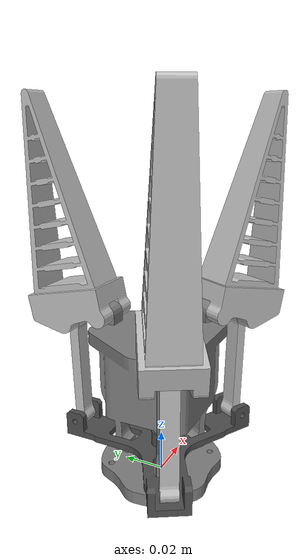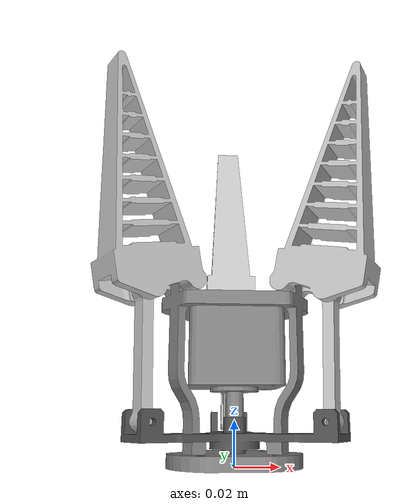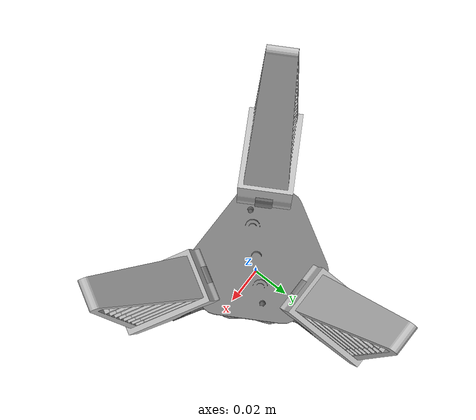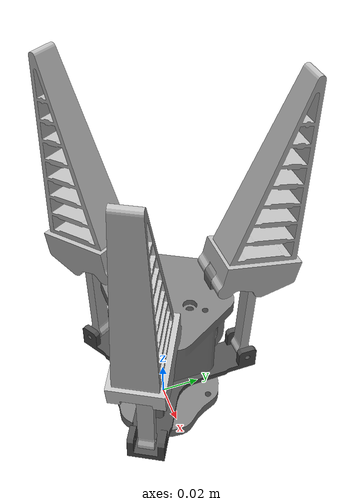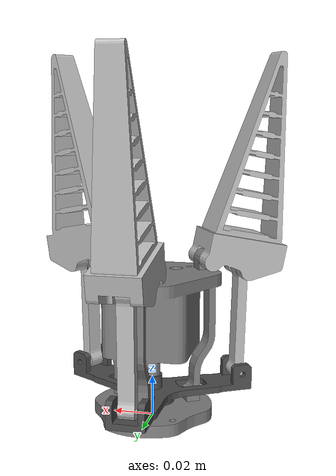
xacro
<?xml version="1.0" encoding="utf-8"?>

<robot name="gripper" xmlns:xacro="http://wiki.ros.org/xacro">

  <xacro:include filename="$(find g3p_description)/urdf/gripper_body.xacro" />

  <!-- Macro for inertia matrix -->
  <xacro:macro name="sphere_inertial_matrix" params="m r">
    <inertial>
      <mass value="${m}" />
        <inertia ixx="${2*m*r*r/5}" ixy="0" ixz="0" iyy="${2*m*r*r/5}" iyz="0"  izz="${2*m*r*r/5}" />
    </inertial>
  </xacro:macro>

  <xacro:macro name="cylinder_inertial_matrix" params="m r h">
    <inertial>
      <mass value="${m}" />
        <inertia ixx="${m*(3*r*r+h*h)/12}" ixy = "0" ixz = "0" iyy="${m*(3*r*r+h*h)/12}" iyz = "0" izz="${m*r*r/2}" />
    </inertial>
  </xacro:macro>

  <xacro:macro name="box_inertial_matrix" params="m w h d">
    <inertial>
      <mass value="${m}" />
        <inertia ixx="${m*(h*h+d*d)/12}" ixy = "0" ixz = "0" iyy="${m*(w*w+d*d)/12}" iyz = "0" izz="${m*(w*w+h*h)/12}" />
    </inertial>
  </xacro:macro>

 <!-- GRIPPER -->
  <link name="world" />

  <joint name="world_joint" type="fixed">
      <parent link="world" />
      <child link = "base_footprint" />
      <origin xyz="0 0 0" rpy="0 0 0" />
  </joint>

  <link name="base_footprint" >
    <xacro:box_inertial_matrix m="200" w ="1" h="0.01" d="1" />
    <visual>
      <origin xyz="0 0 0" rpy="0 0 0" />
      <geometry>
        <box size = "0 0 0" />
      </geometry>
      <material name="" />
    </visual>
    <collision>
        <geometry>
          <box size="0 0 0"/>
        </geometry>
        <origin rpy="0 0 0" xyz="0 0 0"/>
      </collision>
    </link >

  <xacro:gripper_body parent_prefix = "base_footprint">
    <origin xyz="0 0 0" rpy="-1.5708 0 0" />
  </xacro:gripper_body>

</robot>

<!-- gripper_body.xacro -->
<robot xmlns:xacro="http://ros.org/wiki/xacro" name="gripper_body">
  <xacro:macro name="gripper_body" params="parent_prefix *joint_pose">

  <link name="gripper_base_link">
    <inertial>
      <origin xyz="9.76421490710141E-17 0.000265648601089265 0.0461524278849085" rpy="0 0 0" />
      <mass value="0.79116187380842" />
      <inertia ixx="0.00053718861290841" ixy="4.00932740511828E-07" ixz="2.65873212245865E-18" iyy="0.000542127995100117" iyz="-6.49165503557269E-06"
 izz="0.000294143440148547" />
    </inertial>
    <visual>
      <origin xyz="0 0 0" rpy="0 0 0" />
      <geometry>
        <mesh filename="package://g3p_description/meshes/gripper_base_link.STL" />
      </geometry>
      <material name="">
        <color rgba="0.501960784313725 0.501960784313725 0.501960784313725 1" />
      </material>
    </visual>
    <collision>
      <origin xyz="0 0 0" rpy="0 0 0" />
      <geometry>
        <mesh filename="package://g3p_description/meshes/gripper_base_link.STL" />
      </geometry>
    </collision>
  </link>

  <joint name="gripper_base_joint" type="fixed">
    <xacro:insert_block name="joint_pose"/>
    <parent link="${parent_prefix}" />
    <child link="gripper_base_link" />
    <axis xyz="0 0 0" />
  </joint>

  <link name="tray_link">
    <inertial>
      <origin xyz="5.36047598906076E-15 0.00232707405513537 -1.38049714225429E-15" rpy="0 0 0" />
      <mass
        value="0.0821356394304339" />
      <inertia ixx="4.33734561455872E-05" ixy="-3.94177937836002E-19" ixz="-6.32677237213812E-18" iyy="8.53098098578309E-05" iyz="7.77072176014044E-20"
 izz="4.33734561455823E-05" />
    </inertial>
    <visual>
      <origin xyz="0 0 0" rpy="0 0 0" />
      <geometry>
        <mesh filename="package://g3p_description/meshes/tray_link.STL" />
      </geometry>
      <material name="">
        <color rgba="0.309803921568627 0.309803921568627 0.309803921568627 1" />
      </material>
    </visual>
    <collision>
      <origin xyz="0 0 0" rpy="0 0 0" />
      <geometry>
        <mesh filename="package://g3p_description/meshes/tray_link.STL" />
      </geometry>
    </collision>
  </link>

  <joint name="tray_joint" type="prismatic">
    <origin xyz="0 -0.01131 0" rpy="0 0 -3.1416" />
    <parent link="gripper_base_link" />
    <child link="tray_link" />
    <axis xyz="0 1 0" />
    <limit effort="20" lower="0" upper="0.011" velocity="1"/>
  </joint>

  <link name="pull_1_link">
    <inertial>
      <origin xyz="-1.52655665885959E-16 -0.0269999999999995 8.31906186047319E-17" rpy="0 0 0" />
      <mass value="0.0201505664052889" />
      <inertia ixx="6.78250384182504E-06" ixy="-1.01288266007118E-21" ixz="6.95830282202121E-24" iyy="1.6363439918366E-07" iyz="5.30168717822282E-22"
 izz="6.73119886601895E-06" />
    </inertial>
    <visual>
      <origin xyz="0 0 0" rpy="0 0 0" />
      <geometry>
        <mesh filename="package://g3p_description/meshes/pull_1_link.STL" />
      </geometry>
      <material name="">
        <color rgba="0.752941176470588 0.752941176470588 0.752941176470588 1" />
      </material>
    </visual>
    <collision>
      <origin xyz="0 0 0" rpy="0 0 0" />
      <geometry>
        <mesh filename="package://g3p_description/meshes/pull_1_link.STL" />
      </geometry>
    </collision>
  </link>

  <joint name="pull_1_joint" type="continuous">
    <origin xyz="0 0.008 0.045" rpy="-1.5708 -1.5399 -1.5708" />
    <parent link="tray_link" />
    <child link="pull_1_link" />
    <axis xyz="0 0 1" />
  </joint>

  <link name="finger_1_link">
    <inertial>
      <origin xyz="0.00327414395384911 -0.0301543813292435 -1.41874144101929E-06" rpy="0 0 0" />
      <mass value="0.197385673719982" />
      <inertia ixx="9.17016926099929E-05" ixy="-3.00617082135941E-07" ixz="-4.33370258341503E-09" iyy="3.08346654721484E-05" iyz="1.86016117378021E-09"
 izz="0.000104312549244833" />
    </inertial>
    <visual>
      <origin xyz="0 0 0" rpy="0 0 0" />
      <geometry>
        <mesh filename="package://g3p_description/meshes/finger_1_link.STL" />
      </geometry>
      <material name="">
        <color rgba="0.752941176470588 0.752941176470588 0.752941176470588 1" />
      </material>
    </visual>
    <collision>
      <origin xyz="0 0 0" rpy="0 0 0" />
      <geometry>
        <mesh filename="package://g3p_description/meshes/finger_1_link.STL" />
      </geometry>
    </collision>
  </link>

  <joint name="finger_1_joint" type="continuous">
    <origin xyz="0 -0.054 0" rpy="3.1416 0 -2.9699" />
    <parent link="pull_1_link" />
    <child link="finger_1_link" />
    <axis xyz="0 0 1" />
  </joint>

  <link name="pull_2_link">
    <inertial>
      <origin xyz="-1.45716771982052E-16 -0.0269999999999995 3.65158880237609E-18" rpy="0 0 0" />
      <mass value="0.0201505664052889" />
      <inertia ixx="6.78250384182505E-06" ixy="-4.25998015464809E-22" ixz="1.85407384735343E-22" iyy="1.63634399183661E-07" iyz="1.11009017080159E-22"
 izz="6.73119886601897E-06" />
    </inertial>
    <visual>
      <origin xyz="0 0 0" rpy="0 0 0" />
      <geometry>
        <mesh filename="package://g3p_description/meshes/pull_2_link.STL" />
      </geometry>
      <material name="">
        <color rgba="0.752941176470588 0.752941176470588 0.752941176470588 1" />
      </material>
    </visual>
    <collision>
      <origin xyz="0 0 0" rpy="0 0 0" />
      <geometry>
        <mesh filename="package://g3p_description/meshes/pull_2_link.STL" />
      </geometry>
    </collision>
  </link>

  <joint name="pull_2_joint" type="continuous">
    <origin xyz="-0.038971 0.008 -0.0225" rpy="0.017809 0.52332 -3.106" />
    <parent link="tray_link" />
    <child link="pull_2_link" />
    <axis xyz="0 0 1" />
  </joint>

  <link name="finger_2_link">
    <inertial>
      <origin xyz="0.00327414296378778 -0.0301543797316594 -1.41871722065772E-06" rpy="0 0 0" />
      <mass value="0.197385668441477" />
      <inertia ixx="9.1701680956914E-05" ixy="-3.00626235260301E-07" ixz="-4.33372294698928E-09" iyy="3.08346643757593E-05" iyz="1.86039036497011E-09"
 izz="0.00010431253658477" />
    </inertial>
    <visual>
      <origin xyz="0 0 0" rpy="0 0 0" />
      <geometry>
        <mesh filename="package://g3p_description/meshes/finger_2_link.STL" />
      </geometry>
      <material name="">
        <color rgba="0.752941176470588 0.752941176470588 0.752941176470588 1" />
      </material>
    </visual>
    <collision>
      <origin xyz="0 0 0" rpy="0 0 0" />
      <geometry>
        <mesh filename="package://g3p_description/meshes/finger_2_link.STL" />
      </geometry>
    </collision>
  </link>

  <joint name="finger_2_joint" type="continuous">
    <origin xyz="0 -0.054 0" rpy="3.1416 0 -2.9699" />
    <parent link="pull_2_link" />
    <child link="finger_2_link" />
    <axis xyz="0 0 1" />
  </joint>

  <link name="pull_3_link">
    <inertial>
      <origin xyz="-1.45716771982052E-16 -0.0269999999999995 -3.74010017068638E-18" rpy="0 0 0" />
      <mass value="0.0201505664052889" />
      <inertia ixx="6.78250384182505E-06" ixy="9.88067241694592E-22" ixz="3.9060211906152E-23" iyy="1.6363439918366E-07" iyz="-1.0661159051125E-21"
 izz="6.73119886601896E-06" />
    </inertial>
    <visual>
      <origin xyz="0 0 0" rpy="0 0 0" />
      <geometry>
        <mesh filename="package://g3p_description/meshes/pull_3_link.STL" />
      </geometry>
      <material name="">
        <color rgba="0.752941176470588 0.752941176470588 0.752941176470588 1" />
      </material>
    </visual>
    <collision>
      <origin xyz="0 0 0" rpy="0 0 0" />
      <geometry>
        <mesh filename="package://g3p_description/meshes/pull_3_link.STL" />
      </geometry>
    </collision>
  </link>

  <joint name="pull_3_joint" type="continuous">
    <origin xyz="0.038971 0.008 -0.0225" rpy="3.1238 0.52332 -0.035624" />
    <parent link="tray_link" />
    <child link="pull_3_link" />
    <axis xyz="0 0 1" />
  </joint>

  <link name="finger_3_link">
    <inertial>
      <origin xyz="0.0032741429650996 -0.0301543797316852 -1.41877574984922E-06" rpy="0 0 0" />
      <mass value="0.197385668441743" />
      <inertia ixx="9.17016809557109E-05" ixy="-3.00626219152139E-07" ixz="-4.33368283713442E-09" iyy="3.08346643755567E-05" iyz="1.85988448365923E-09"
 izz="0.000104312536585606" />
    </inertial>
    <visual>
      <origin xyz="0 0 0" rpy="0 0 0" />
      <geometry>
        <mesh filename="package://g3p_description/meshes/finger_3_link.STL" />
      </geometry>
      <material name="">
        <color rgba="0.752941176470588 0.752941176470588 0.752941176470588 1" />
      </material>
    </visual>
    <collision>
      <origin xyz="0 0 0" rpy="0 0 0" />
      <geometry>
        <mesh filename="package://g3p_description/meshes/finger_3_link.STL" />
      </geometry>
    </collision>
  </link>

  <joint name="finger_3_joint" type="continuous">
    <origin xyz="0 -0.054 0" rpy="3.1416 0 -2.9699" />
    <parent link="pull_3_link" />
    <child link="finger_3_link" />
    <axis xyz="0 0 1" />
  </joint>

  <!-- Transmissions for ROS Control -->
  <xacro:macro name="transmission_block" params="joint_name">
    <transmission name="${joint_name}_trans">
      <type>transmission_interface/SimpleTransmission</type>
      <joint name="${joint_name}">
        <hardwareInterface>hardware_interface/PositionJointInterface</hardwareInterface>
      </joint>
      <actuator name="${joint_name}_motor">
        <hardwareInterface>hardware_interface/PositionJointInterface</hardwareInterface>
        <mechanicalReduction>1</mechanicalReduction>
      </actuator>
    </transmission>
  </xacro:macro>

  <xacro:transmission_block joint_name="pull_1_joint"/>
  <xacro:transmission_block joint_name="pull_2_joint"/>
  <xacro:transmission_block joint_name="pull_3_joint"/>
  <xacro:transmission_block joint_name="finger_1_joint"/>
  <xacro:transmission_block joint_name="finger_2_joint"/>
  <xacro:transmission_block joint_name="finger_3_joint"/>

  <!-- ros_control plugin -->
  <gazebo>
    <plugin name="gazebo_ros_control" filename="libgazebo_ros_control.so">
      <robotNamespace>/gripper</robotNamespace>
      <robotSimType>gazebo_ros_control/DefaultRobotHWSim</robotSimType>
      <legacyModeNS>true</legacyModeNS>
    </plugin>
  </gazebo>

  </xacro:macro>
</robot>
